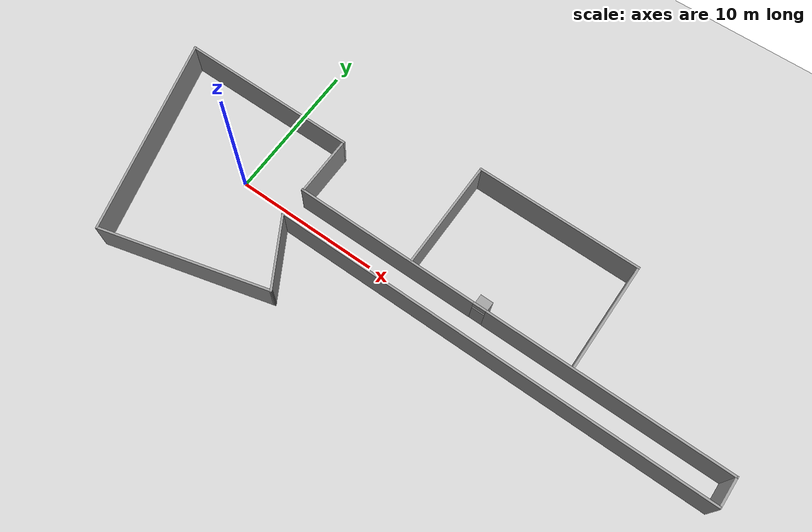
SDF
<sdf version="1.6">
 <world name="default">
  <light name="sun" type="directional">
   <pose>0 0 10 0 -0 0</pose>
   <diffuse>0.8 0.8 0.8 1</diffuse>
   <specular>0.2 0.2 0.2 1</specular>
   <attenuation>
    <range>1000</range>
    <constant>0.9</constant>
    <linear>0.01</linear>
    <quadratic>0.001</quadratic>
   </attenuation>
   <direction>-0.5 0.1 -0.9</direction>
  </light>
  <model name="ground_plane">
   <static>1</static>
   <link name="link">
    <collision name="collision">
     <geometry><plane><normal>0 0 1</normal><size>100 100</size></plane></geometry>
     <surface><friction><ode><mu>100</mu><mu2>50</mu2></ode></friction></surface>
    </collision>
    <visual name="visual">
     <cast_shadows>0</cast_shadows>
     <geometry><plane><normal>0 0 1</normal><size>100 100</size></plane></geometry>
     <material>
      <script><uri>file://media/materials/scripts/gazebo.material</uri><name>Gazebo/Grey</name></script>
     </material>
    </visual>
   </link>
  </model>
  <gravity>0 0 -9.8</gravity>
  <magnetic_field>6e-06 2.3e-05 -4.2e-05</magnetic_field>
  <atmosphere type="adiabatic"/>
  <physics name="default_physics" default="0" type="ode">
   <max_step_size>0.001</max_step_size>
   <real_time_factor>1</real_time_factor>
   <real_time_update_rate>1000</real_time_update_rate>
  </physics>
  <scene><ambient>0.4 0.4 0.4 1</ambient><background>0.7 0.7 0.7 1</background><shadows>1</shadows></scene>
  <spherical_coordinates>
   <surface_model>EARTH_WGS84</surface_model>
   <latitude_deg>0</latitude_deg>
   <longitude_deg>0</longitude_deg>
   <elevation>0</elevation>
   <heading_deg>0</heading_deg>
  </spherical_coordinates>
  <model name="Door">
   <pose>12.9928 0.147194 0 0 -0 0</pose>
   <link name="Wall_10">
    <collision name="Wall_10_Collision">
     <geometry><box><size>4.25 0.15 2.5</size></box></geometry>
     <pose>0 0 1.25 0 -0 0</pose>
    </collision>
    <visual name="Wall_10_Visual">
     <pose>0 0 1.25 0 -0 0</pose>
     <geometry><box><size>4.25 0.15 2.5</size></box></geometry>
     <material>
      <script><uri>file://media/materials/scripts/gazebo.material</uri><name>Gazebo/Grey</name></script>
      <ambient>1 1 1 1</ambient>
     </material>
     <meta><layer>0</layer></meta>
    </visual>
    <pose>-8.79362 3.01204 0 0 0 -1.5708</pose>
   </link>
   <link name="Wall_12">
    <collision name="Wall_12_Collision">
     <geometry><box><size>7.75 0.15 2.5</size></box></geometry>
     <pose>0 0 1.25 0 -0 0</pose>
    </collision>
    <visual name="Wall_12_Visual">
     <pose>0 0 1.25 0 -0 0</pose>
     <geometry><box><size>7.75 0.15 2.5</size></box></geometry>
     <material>
      <script><uri>file://media/materials/scripts/gazebo.material</uri><name>Gazebo/Grey</name></script>
      <ambient>1 1 1 1</ambient>
     </material>
     <meta><layer>0</layer></meta>
    </visual>
    <pose>-0.620819 4.77402 0 0 -0 1.5708</pose>
   </link>
   <link name="Wall_13">
    <collision name="Wall_13_Collision">
     <geometry><box><size>11.5001 0.15 2.5</size></box></geometry>
     <pose>0 0 1.25 0 -0 0</pose>
    </collision>
    <visual name="Wall_13_Visual">
     <pose>0 0 1.25 0 -0 0</pose>
     <geometry><box><size>11.5001 0.15 2.5</size></box></geometry>
     <material>
      <script><uri>file://media/materials/scripts/gazebo.material</uri><name>Gazebo/Grey</name></script>
      <ambient>1 1 1 1</ambient>
     </material>
     <meta><layer>0</layer></meta>
    </visual>
    <pose>5.05418 8.54727 0 0 0 -0.004714</pose>
   </link>
   <link name="Wall_14">
    <collision name="Wall_14_Collision">
     <geometry><box><size>7.75 0.15 2.5</size></box></geometry>
     <pose>0 0 1.25 0 -0 0</pose>
    </collision>
    <visual name="Wall_14_Visual">
     <pose>0 0 1.25 0 -0 0</pose>
     <geometry><box><size>7.75 0.15 2.5</size></box></geometry>
     <material>
      <script><uri>file://media/materials/scripts/gazebo.material</uri><name>Gazebo/Grey</name></script>
      <ambient>1 1 1 1</ambient>
     </material>
     <meta><layer>0</layer></meta>
    </visual>
    <pose>10.7292 4.72052 0 0 0 -1.5708</pose>
   </link>
   <link name="Wall_2">
    <pose>6.16047 0.861513 0 0 -0 0</pose>
    <visual name="Wall_2_Visual_0">
     <pose>-8.67665 0 1.25 0 -0 0</pose>
     <geometry><box><size>12.7967 0.15 2.5</size></box></geometry>
     <material>
      <script><uri>file://media/materials/scripts/gazebo.material</uri><name>Gazebo/Grey</name></script>
      <ambient>1 1 1 1</ambient>
     </material>
     <meta><layer>0</layer></meta>
    </visual>
    <collision name="Wall_2_Collision_0">
     <geometry><box><size>12.7967 0.15 2.5</size></box></geometry>
     <pose>-8.67665 0 1.25 0 -0 0</pose>
    </collision>
    <visual name="Wall_2_Visual_1">
     <pose>6.84835 0 1.25 0 -0 0</pose>
     <geometry><box><size>16.4533 0.15 2.5</size></box></geometry>
     <material>
      <script><uri>file://media/materials/scripts/gazebo.material</uri><name>Gazebo/Grey</name></script>
      <ambient>1 1 1 1</ambient>
     </material>
     <meta><layer>0</layer></meta>
    </visual>
    <collision name="Wall_2_Collision_1">
     <geometry><box><size>16.4533 0.15 2.5</size></box></geometry>
     <pose>6.84835 0 1.25 0 -0 0</pose>
    </collision>
    <visual name="Wall_2_Visual_2">
     <pose>-1.8283 0 2.25 0 -0 0</pose>
     <geometry><box><size>0.9 0.15 0.5</size></box></geometry>
     <material>
      <script><uri>file://media/materials/scripts/gazebo.material</uri><name>Gazebo/Grey</name></script>
      <ambient>1 1 1 1</ambient>
     </material>
     <meta><layer>0</layer></meta>
    </visual>
    <collision name="Wall_2_Collision_2">
     <geometry><box><size>0.9 0.15 0.5</size></box></geometry>
     <pose>-1.8283 0 2.25 0 -0 0</pose>
    </collision>
   </link>
   <link name="Wall_3">
    <collision name="Wall_3_Collision">
     <geometry><box><size>2.15 0.15 2.5</size></box></geometry>
     <pose>0 0 1.25 0 -0 0</pose>
    </collision>
    <visual name="Wall_3_Visual">
     <pose>0 0 1.25 0 -0 0</pose>
     <geometry><box><size>2.15 0.15 2.5</size></box></geometry>
     <material>
      <script><uri>file://media/materials/scripts/gazebo.material</uri><name>Gazebo/Grey</name></script>
      <ambient>1 1 1 1</ambient>
     </material>
     <meta><layer>0</layer></meta>
    </visual>
    <pose>21.1605 -0.138487 0 0 0 -1.5708</pose>
   </link>
   <link name="Wall_4">
    <collision name="Wall_4_Collision">
     <geometry><box><size>30.15 0.15 2.5</size></box></geometry>
     <pose>0 0 1.25 0 -0 0</pose>
    </collision>
    <visual name="Wall_4_Visual">
     <pose>0 0 1.25 0 -0 0</pose>
     <geometry><box><size>30.15 0.15 2.5</size></box></geometry>
     <material>
      <script><uri>file://media/materials/scripts/gazebo.material</uri><name>Gazebo/Grey</name></script>
      <ambient>1 1 1 1</ambient>
     </material>
     <meta><layer>0</layer></meta>
    </visual>
    <pose>6.16047 -1.13849 0 0 -0 3.14159</pose>
   </link>
   <link name="Wall_6">
    <collision name="Wall_6_Collision">
     <geometry><box><size>5.25 0.15 2.5</size></box></geometry>
     <pose>0 0 1.25 0 -0 0</pose>
    </collision>
    <visual name="Wall_6_Visual">
     <pose>0 0 1.25 0 -0 0</pose>
     <geometry><box><size>5.25 0.15 2.5</size></box></geometry>
     <material>
      <script><uri>file://media/materials/scripts/gazebo.material</uri><name>Gazebo/Grey</name></script>
      <ambient>1 1 1 1</ambient>
     </material>
     <meta><layer>0</layer></meta>
    </visual>
    <pose>-7.56453 -3.34685 0 0 0 -1.0472</pose>
   </link>
   <link name="Wall_7">
    <collision name="Wall_7_Collision">
     <geometry><box><size>11.75 0.15 2.5</size></box></geometry>
     <pose>0 0 1.25 0 -0 0</pose>
    </collision>
    <visual name="Wall_7_Visual">
     <pose>0 0 1.25 0 -0 0</pose>
     <geometry><box><size>11.75 0.15 2.5</size></box></geometry>
     <material>
      <script><uri>file://media/materials/scripts/gazebo.material</uri><name>Gazebo/Grey</name></script>
      <ambient>1 1 1 1</ambient>
     </material>
     <meta><layer>0</layer></meta>
    </visual>
    <pose>-11.8919 -7.05637 0 0 0 -2.87979</pose>
   </link>
   <link name="Wall_8">
    <collision name="Wall_8_Collision">
     <geometry><box><size>14.25 0.15 2.5</size></box></geometry>
     <pose>0 0 1.25 0 -0 0</pose>
    </collision>
    <visual name="Wall_8_Visual">
     <pose>0 0 1.25 0 -0 0</pose>
     <geometry><box><size>14.25 0.15 2.5</size></box></geometry>
     <material>
      <script><uri>file://media/materials/scripts/gazebo.material</uri><name>Gazebo/Grey</name></script>
      <ambient>1 1 1 1</ambient>
     </material>
     <meta><layer>0</layer></meta>
    </visual>
    <pose>-19.3189 -1.74774 0 0 -0 1.8326</pose>
   </link>
   <link name="Wall_9">
    <collision name="Wall_9_Collision">
     <geometry><box><size>12.5 0.15 2.5</size></box></geometry>
     <pose>0 0 1.25 0 -0 0</pose>
    </collision>
    <visual name="Wall_9_Visual">
     <pose>0 0 1.25 0 -0 0</pose>
     <geometry><box><size>12.5 0.15 2.5</size></box></geometry>
     <material>
      <script><uri>file://media/materials/scripts/gazebo.material</uri><name>Gazebo/Grey</name></script>
      <ambient>1 1 1 1</ambient>
     </material>
     <meta><layer>0</layer></meta>
    </visual>
    <pose>-14.9686 5.06204 0 0 -0 0</pose>
   </link>
   <static>1</static>
  </model>
  <model name="unit_box">
   <pose>17.3322 1.43848 0.899625 1e-06 1e-06 -0.009492</pose>
   <link name="link">
    <inertial>
     <mass>1</mass>
     <inertia>
      <ixx>0.166667</ixx>
      <ixy>0</ixy>
      <ixz>0</ixz>
      <iyy>0.166667</iyy>
      <iyz>0</iyz>
      <izz>0.166667</izz>
     </inertia>
    </inertial>
    <collision name="collision"><geometry><box><size>0.891934 1 1.79924</size></box></geometry></collision>
    <visual name="visual">
     <geometry><box><size>0.891934 1 1.79924</size></box></geometry>
     <material>
      <script><name>Gazebo/Grey</name><uri>file://media/materials/scripts/gazebo.material</uri></script>
     </material>
    </visual>
   </link>
  </model>
 </world>
</sdf>
